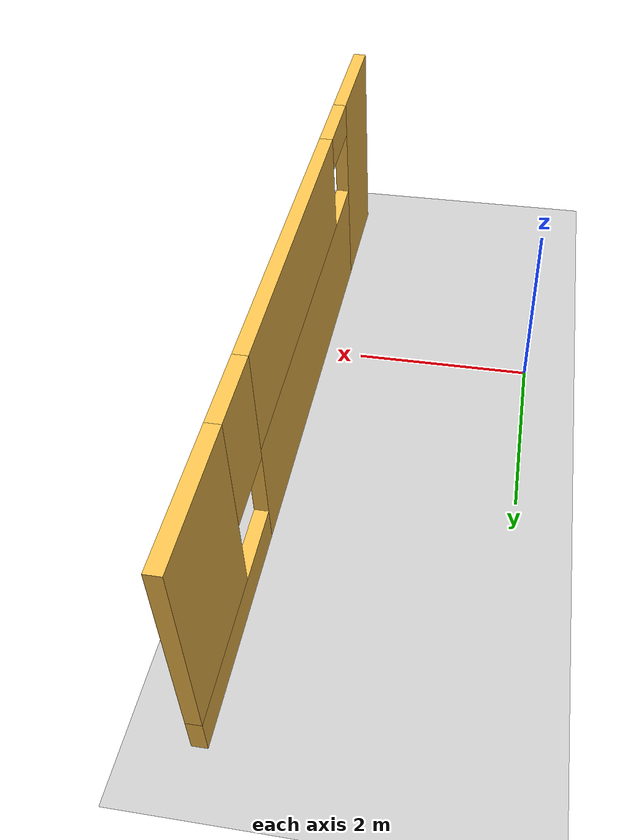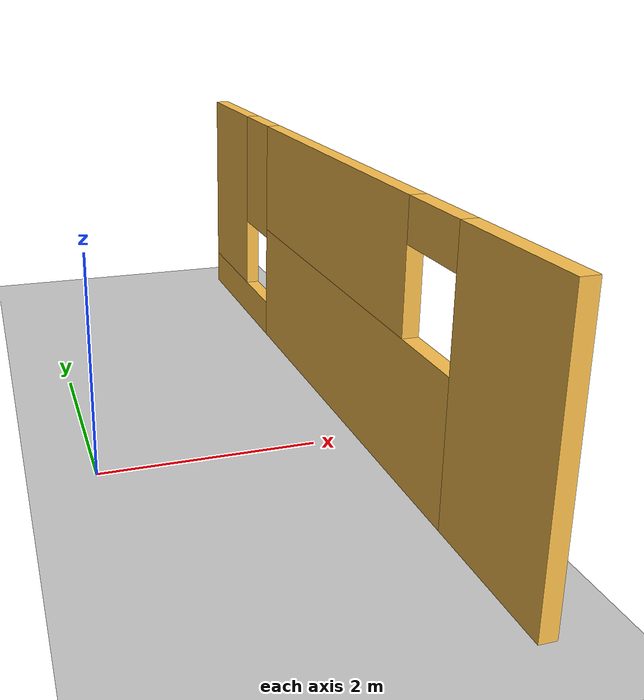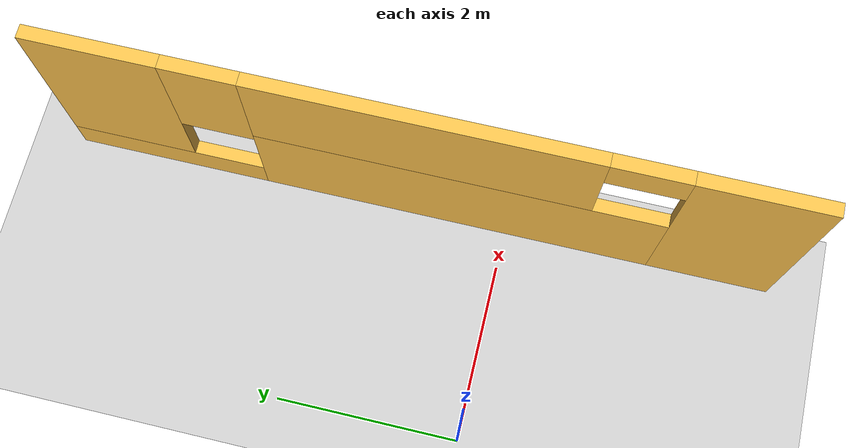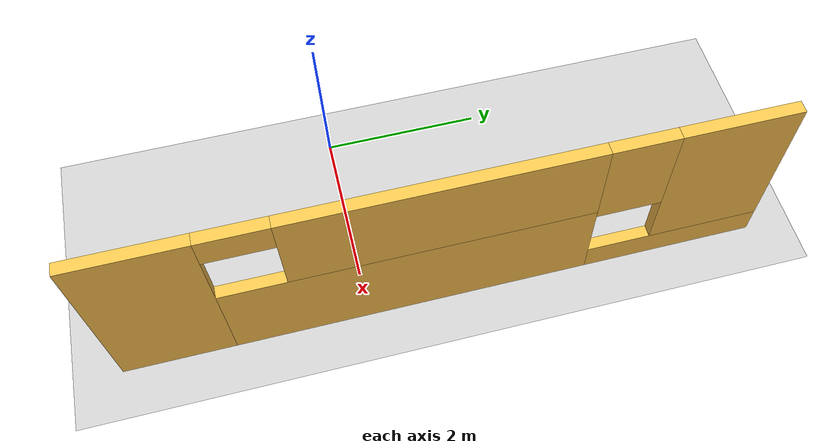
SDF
<?xml version="1.0" ?>
<sdf version='1.6'>
  <world name='default'>
    <include>
      <uri>model://ground_plane</uri>
    </include>
    <include>
      <uri>model://sun</uri>
    </include>

    <!-- Only one ROS interface plugin is required per world, as any other plugin can connect a Gazebo
         topic to a ROS topic (or vise versa). -->
    <plugin name="ros_interface_plugin" filename="librotors_gazebo_ros_interface_plugin.so"/>

    <spherical_coordinates>
      <surface_model>EARTH_WGS84</surface_model>
      <latitude_deg>47.3667</latitude_deg>
      <longitude_deg>8.5500</longitude_deg>
      <elevation>500.0</elevation>
      <heading_deg>0</heading_deg>
    </spherical_coordinates>
    <physics type='ode'>
      <ode>
        <solver>
          <type>quick</type>
          <iters>1000</iters>
          <sor>1.3</sor>
        </solver>
        <constraints>
          <cfm>0</cfm>
          <erp>0.2</erp>
          <contact_max_correcting_vel>100</contact_max_correcting_vel>
          <contact_surface_layer>0.001</contact_surface_layer>
        </constraints>
      </ode>
      <max_step_size>0.01</max_step_size>
      <real_time_factor>1</real_time_factor>
      <real_time_update_rate>100</real_time_update_rate>
      <gravity>0 0 -9.8</gravity>
    </physics>

    <model name='2Windows'>
      <pose frame=''>2.5 1.0 0 0 -0 0</pose>
      <link name='Wall_0'>
        <pose frame=''>0 0 0 0 -0 1.5708</pose>
        <visual name='Wall_0_Visual_0'>
          <pose frame=''>-3.31603 0 1.25 0 -0 0</pose>
          <geometry>
            <box>
              <size>1.36793 0.15 2.5</size>
            </box>
          </geometry>
          <material>
            <script>
              <uri>file://media/materials/scripts/gazebo.material</uri>
              <name>Gazebo/Grey</name>
            </script>
            <ambient>1 0.764706 0.305882 1</ambient>
          </material>
        </visual>
        <collision name='Wall_0_Collision_0'>
          <geometry>
            <box>
              <size>1.36793 0.15 2.5</size>
            </box>
          </geometry>
          <pose frame=''>-3.31603 0 1.25 0 -0 0</pose>
          <max_contacts>10</max_contacts>
          <surface>
            <contact>
              <ode/>
            </contact>
            <bounce/>
            <friction>
              <torsional>
                <ode/>
              </torsional>
              <ode/>
            </friction>
          </surface>
        </collision>
        <visual name='Wall_0_Visual_1'>
          <pose frame=''>-0.423092 0 0.65 0 -0 0</pose>
          <geometry>
            <box>
              <size>4.41795 0.15 1.3</size>
            </box>
          </geometry>
          <material>
            <script>
              <uri>file://media/materials/scripts/gazebo.material</uri>
              <name>Gazebo/Grey</name>
            </script>
            <ambient>1 0.764706 0.305882 1</ambient>
          </material>
        </visual>
        <collision name='Wall_0_Collision_1'>
          <geometry>
            <box>
              <size>4.41795 0.15 1.3</size>
            </box>
          </geometry>
          <pose frame=''>-0.423092 0 0.65 0 -0 0</pose>
          <max_contacts>10</max_contacts>
          <surface>
            <contact>
              <ode/>
            </contact>
            <bounce/>
            <friction>
              <torsional>
                <ode/>
              </torsional>
              <ode/>
            </friction>
          </surface>
        </collision>
        <visual name='Wall_0_Visual_2'>
          <pose frame=''>2.89294 0 0.2 0 -0 0</pose>
          <geometry>
            <box>
              <size>2.21412 0.15 0.4</size>
            </box>
          </geometry>
          <material>
            <script>
              <uri>file://media/materials/scripts/gazebo.material</uri>
              <name>Gazebo/Grey</name>
            </script>
            <ambient>1 0.764706 0.305882 1</ambient>
          </material>
        </visual>
        <collision name='Wall_0_Collision_2'>
          <geometry>
            <box>
              <size>2.21412 0.15 0.4</size>
            </box>
          </geometry>
          <pose frame=''>2.89294 0 0.2 0 -0 0</pose>
          <max_contacts>10</max_contacts>
          <surface>
            <contact>
              <ode/>
            </contact>
            <bounce/>
            <friction>
              <torsional>
                <ode/>
              </torsional>
              <ode/>
            </friction>
          </surface>
        </collision>
        <visual name='Wall_0_Visual_3'>
          <pose frame=''>3.29294 0 1.45 0 -0 0</pose>
          <geometry>
            <box>
              <size>1.41412 0.15 2.1</size>
            </box>
          </geometry>
          <material>
            <script>
              <uri>file://media/materials/scripts/gazebo.material</uri>
              <name>Gazebo/Grey</name>
            </script>
            <ambient>1 0.764706 0.305882 1</ambient>
          </material>
        </visual>
        <collision name='Wall_0_Collision_3'>
          <geometry>
            <box>
              <size>1.41412 0.15 2.1</size>
            </box>
          </geometry>
          <pose frame=''>3.29294 0 1.45 0 -0 0</pose>
          <max_contacts>10</max_contacts>
          <surface>
            <contact>
              <ode/>
            </contact>
            <bounce/>
            <friction>
              <torsional>
                <ode/>
              </torsional>
              <ode/>
            </friction>
          </surface>
        </collision>
        <visual name='Wall_0_Visual_4'>
          <pose frame=''>2.18588 0 1.85 0 -0 0</pose>
          <geometry>
            <box>
              <size>0.8 0.15 1.3</size>
            </box>
          </geometry>
          <material>
            <script>
              <uri>file://media/materials/scripts/gazebo.material</uri>
              <name>Gazebo/Grey</name>
            </script>
            <ambient>1 0.764706 0.305882 1</ambient>
          </material>
        </visual>
        <collision name='Wall_0_Collision_4'>
          <geometry>
            <box>
              <size>0.8 0.15 1.3</size>
            </box>
          </geometry>
          <pose frame=''>2.18588 0 1.85 0 -0 0</pose>
          <max_contacts>10</max_contacts>
          <surface>
            <contact>
              <ode/>
            </contact>
            <bounce/>
            <friction>
              <torsional>
                <ode/>
              </torsional>
              <ode/>
            </friction>
          </surface>
        </collision>
        <visual name='Wall_0_Visual_5'>
          <pose frame=''>-0.023092 0 1.9 0 -0 0</pose>
          <geometry>
            <box>
              <size>3.61795 0.15 1.2</size>
            </box>
          </geometry>
          <material>
            <script>
              <uri>file://media/materials/scripts/gazebo.material</uri>
              <name>Gazebo/Grey</name>
            </script>
            <ambient>1 0.764706 0.305882 1</ambient>
          </material>
        </visual>
        <collision name='Wall_0_Collision_5'>
          <geometry>
            <box>
              <size>3.61795 0.15 1.2</size>
            </box>
          </geometry>
          <pose frame=''>-0.023092 0 1.9 0 -0 0</pose>
          <max_contacts>10</max_contacts>
          <surface>
            <contact>
              <ode/>
            </contact>
            <bounce/>
            <friction>
              <torsional>
                <ode/>
              </torsional>
              <ode/>
            </friction>
          </surface>
        </collision>
        <visual name='Wall_0_Visual_6'>
          <pose frame=''>-2.23206 0 2.3 0 -0 0</pose>
          <geometry>
            <box>
              <size>0.8 0.15 0.4</size>
            </box>
          </geometry>
          <material>
            <script>
              <uri>file://media/materials/scripts/gazebo.material</uri>
              <name>Gazebo/Grey</name>
            </script>
            <ambient>1 0.764706 0.305882 1</ambient>
          </material>
        </visual>
        <collision name='Wall_0_Collision_6'>
          <geometry>
            <box>
              <size>0.8 0.15 0.4</size>
            </box>
          </geometry>
          <pose frame=''>-2.23206 0 2.3 0 -0 0</pose>
          <max_contacts>10</max_contacts>
          <surface>
            <contact>
              <ode/>
            </contact>
            <bounce/>
            <friction>
              <torsional>
                <ode/>
              </torsional>
              <ode/>
            </friction>
          </surface>
        </collision>
        <self_collide>0</self_collide>
        <kinematic>0</kinematic>
        <gravity>1</gravity>
      </link>
      <static>1</static>
    </model>

  </world>
</sdf>
